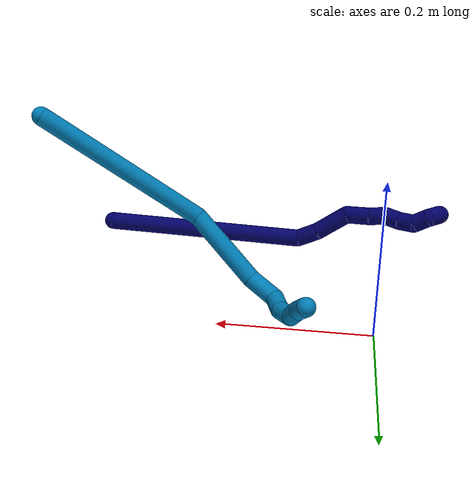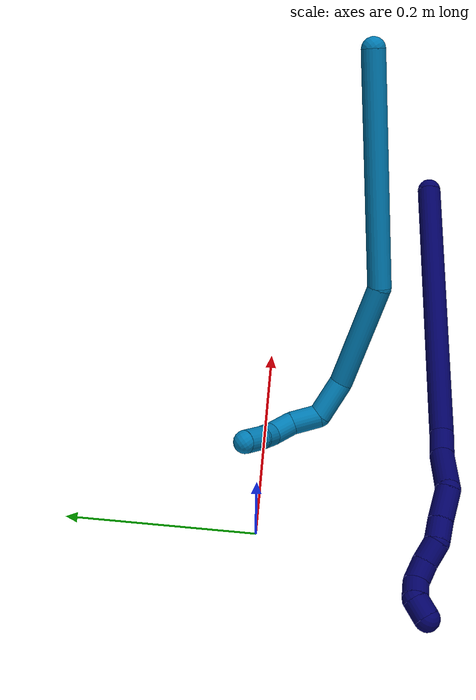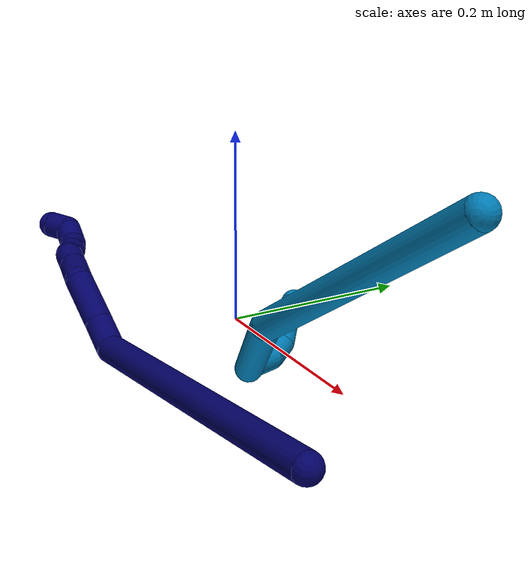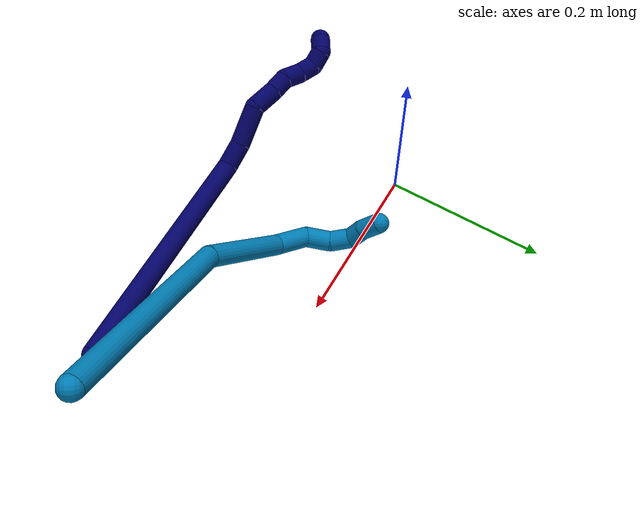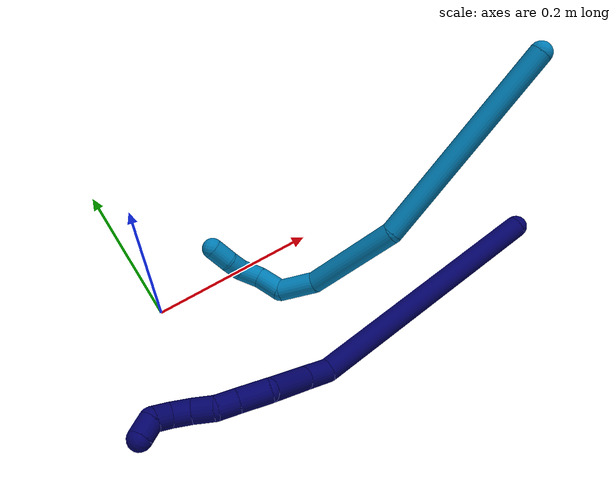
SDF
<sdf version="1.7">
 <world name="default">
  <model name="7">
   <static>0</static>
   <link name="7">
    <collision name="collision-cylinder-e_1_1_4">
     <pose>-0.11736 -0.004647 -0.07619 3.08068 -0.99414 -3.02939</pose>
     <geometry><cylinder><radius>0.0125</radius><length>0.28</length></cylinder></geometry>
     <surface>
      <friction><ode><mu>1.16</mu><mu2>1.16</mu2><slip1>0</slip1><slip2>0</slip2></ode></friction>
      <contact><ode><kp>1e+06</kp><kd>1</kd><max_vel>0</max_vel><min_depth>0.001</min_depth></ode></contact>
     </surface>
    </collision>
    <visual name="visual-cylinder-e_1_1_4">
     <pose>-0.11736 -0.004647 -0.07619 3.08068 -0.99414 -3.02939</pose>
     <geometry><cylinder><radius>0.0125</radius><length>0.28</length></cylinder></geometry>
     <material><ambient>0.003922 0 0.403922 1</ambient></material>
    </visual>
    <collision name="collision-cylinder-e_2_4_5">
     <pose>-0.249876 -0.005566 -0.154296 -2.04583 -1.30099 1.78987</pose>
     <geometry><cylinder><radius>0.0125</radius><length>0.031448</length></cylinder></geometry>
     <surface>
      <friction><ode><mu>1.16</mu><mu2>1.16</mu2><slip1>0</slip1><slip2>0</slip2></ode></friction>
      <contact><ode><kp>1e+06</kp><kd>1</kd><max_vel>0</max_vel><min_depth>0.001</min_depth></ode></contact>
     </surface>
    </collision>
    <visual name="visual-cylinder-e_2_4_5">
     <pose>-0.249876 -0.005566 -0.154296 -2.04583 -1.30099 1.78987</pose>
     <geometry><cylinder><radius>0.0125</radius><length>0.031448</length></cylinder></geometry>
     <material><ambient>0.003922 0 0.403922 1</ambient></material>
    </visual>
    <collision name="collision-cylinder-e_3_5_6">
     <pose>-0.289481 0.003245 -0.154973 -1.33154 -1.35991 1.1316</pose>
     <geometry><cylinder><radius>0.0125</radius><length>0.050006</length></cylinder></geometry>
     <surface>
      <friction><ode><mu>1.16</mu><mu2>1.16</mu2><slip1>0</slip1><slip2>0</slip2></ode></friction>
      <contact><ode><kp>1e+06</kp><kd>1</kd><max_vel>0</max_vel><min_depth>0.001</min_depth></ode></contact>
     </surface>
    </collision>
    <visual name="visual-cylinder-e_3_5_6">
     <pose>-0.289481 0.003245 -0.154973 -1.33154 -1.35991 1.1316</pose>
     <geometry><cylinder><radius>0.0125</radius><length>0.050006</length></cylinder></geometry>
     <material><ambient>0.003922 0 0.403922 1</ambient></material>
    </visual>
    <collision name="collision-cylinder-e_4_6_7">
     <pose>-0.327401 0.013068 -0.162045 -2.62358 -0.953236 2.19334</pose>
     <geometry><cylinder><radius>0.0125</radius><length>0.033045</length></cylinder></geometry>
     <surface>
      <friction><ode><mu>1.16</mu><mu2>1.16</mu2><slip1>0</slip1><slip2>0</slip2></ode></friction>
      <contact><ode><kp>1e+06</kp><kd>1</kd><max_vel>0</max_vel><min_depth>0.001</min_depth></ode></contact>
     </surface>
    </collision>
    <visual name="visual-cylinder-e_4_6_7">
     <pose>-0.327401 0.013068 -0.162045 -2.62358 -0.953236 2.19334</pose>
     <geometry><cylinder><radius>0.0125</radius><length>0.033045</length></cylinder></geometry>
     <material><ambient>0.003922 0 0.403922 1</ambient></material>
    </visual>
    <collision name="collision-cylinder-e_5_7_8">
     <pose>-0.350594 0.020826 -0.174864 -2.5511 -1.06177 2.18567</pose>
     <geometry><cylinder><radius>0.0125</radius><length>0.022268</length></cylinder></geometry>
     <surface>
      <friction><ode><mu>1.16</mu><mu2>1.16</mu2><slip1>0</slip1><slip2>0</slip2></ode></friction>
      <contact><ode><kp>1e+06</kp><kd>1</kd><max_vel>0</max_vel><min_depth>0.001</min_depth></ode></contact>
     </surface>
    </collision>
    <visual name="visual-cylinder-e_5_7_8">
     <pose>-0.350594 0.020826 -0.174864 -2.5511 -1.06177 2.18567</pose>
     <geometry><cylinder><radius>0.0125</radius><length>0.022268</length></cylinder></geometry>
     <material><ambient>0.003922 0 0.403922 1</ambient></material>
    </visual>
    <collision name="collision-cylinder-e_6_8_9">
     <pose>-0.366874 0.028975 -0.186779 -2.53613 -0.629226 1.61183</pose>
     <geometry><cylinder><radius>0.0125</radius><length>0.022288</length></cylinder></geometry>
     <surface>
      <friction><ode><mu>1.16</mu><mu2>1.16</mu2><slip1>0</slip1><slip2>0</slip2></ode></friction>
      <contact><ode><kp>1e+06</kp><kd>1</kd><max_vel>0</max_vel><min_depth>0.001</min_depth></ode></contact>
     </surface>
    </collision>
    <visual name="visual-cylinder-e_6_8_9">
     <pose>-0.366874 0.028975 -0.186779 -2.53613 -0.629226 1.61183</pose>
     <geometry><cylinder><radius>0.0125</radius><length>0.022288</length></cylinder></geometry>
     <material><ambient>0.003922 0 0.403922 1</ambient></material>
    </visual>
    <collision name="collision-cylinder-e_7_9_10">
     <pose>-0.380822 0.038418 -0.200094 -2.51058 -0.790411 1.81367</pose>
     <geometry><cylinder><radius>0.0125</radius><length>0.020795</length></cylinder></geometry>
     <surface>
      <friction><ode><mu>1.16</mu><mu2>1.16</mu2><slip1>0</slip1><slip2>0</slip2></ode></friction>
      <contact><ode><kp>1e+06</kp><kd>1</kd><max_vel>0</max_vel><min_depth>0.001</min_depth></ode></contact>
     </surface>
    </collision>
    <visual name="visual-cylinder-e_7_9_10">
     <pose>-0.380822 0.038418 -0.200094 -2.51058 -0.790411 1.81367</pose>
     <geometry><cylinder><radius>0.0125</radius><length>0.020795</length></cylinder></geometry>
     <material><ambient>0.003922 0 0.403922 1</ambient></material>
    </visual>
    <collision name="collision-cylinder-e_8_10_11">
     <pose>-0.397769 0.045725 -0.206529 -1.74572 -1.26312 1.4344</pose>
     <geometry><cylinder><radius>0.0125</radius><length>0.020059</length></cylinder></geometry>
     <surface>
      <friction><ode><mu>1.16</mu><mu2>1.16</mu2><slip1>0</slip1><slip2>0</slip2></ode></friction>
      <contact><ode><kp>1e+06</kp><kd>1</kd><max_vel>0</max_vel><min_depth>0.001</min_depth></ode></contact>
     </surface>
    </collision>
    <visual name="visual-cylinder-e_8_10_11">
     <pose>-0.397769 0.045725 -0.206529 -1.74572 -1.26312 1.4344</pose>
     <geometry><cylinder><radius>0.0125</radius><length>0.020059</length></cylinder></geometry>
     <material><ambient>0.003922 0 0.403922 1</ambient></material>
    </visual>
    <collision name="collision-cylinder-e_9_11_2">
     <pose>-0.416201 0.044507 -0.209171 2.03614 -1.08281 -1.54531</pose>
     <geometry><cylinder><radius>0.0125</radius><length>0.020091</length></cylinder></geometry>
     <surface>
      <friction><ode><mu>1.16</mu><mu2>1.16</mu2><slip1>0</slip1><slip2>0</slip2></ode></friction>
      <contact><ode><kp>1e+06</kp><kd>1</kd><max_vel>0</max_vel><min_depth>0.001</min_depth></ode></contact>
     </surface>
    </collision>
    <visual name="visual-cylinder-e_9_11_2">
     <pose>-0.416201 0.044507 -0.209171 2.03614 -1.08281 -1.54531</pose>
     <geometry><cylinder><radius>0.0125</radius><length>0.020091</length></cylinder></geometry>
     <material><ambient>0.003922 0 0.403922 1</ambient></material>
    </visual>
    <collision name="collision-sphere-2">
     <pose>-0.425074 0.040298 -0.211284 0 -0 0</pose>
     <geometry><sphere><radius>0.0125</radius></sphere></geometry>
     <surface>
      <friction><ode><mu>1.16</mu><mu2>1.16</mu2><slip1>0</slip1><slip2>0</slip2></ode></friction>
      <contact><ode><kp>1e+06</kp><kd>1</kd><max_vel>0</max_vel><min_depth>0.001</min_depth></ode></contact>
     </surface>
    </collision>
    <visual name="visual-sphere-2">
     <pose>-0.425074 0.040298 -0.211284 0 -0 0</pose>
     <geometry><sphere><radius>0.0125</radius></sphere></geometry>
     <material><ambient>0.003922 0 0.403922 1</ambient></material>
    </visual>
    <collision name="collision-sphere-11">
     <pose>-0.407328 0.048716 -0.207058 0 -0 0</pose>
     <geometry><sphere><radius>0.0125</radius></sphere></geometry>
     <surface>
      <friction><ode><mu>1.16</mu><mu2>1.16</mu2><slip1>0</slip1><slip2>0</slip2></ode></friction>
      <contact><ode><kp>1e+06</kp><kd>1</kd><max_vel>0</max_vel><min_depth>0.001</min_depth></ode></contact>
     </surface>
    </collision>
    <visual name="visual-sphere-11">
     <pose>-0.407328 0.048716 -0.207058 0 -0 0</pose>
     <geometry><sphere><radius>0.0125</radius></sphere></geometry>
     <material><ambient>0.003922 0 0.403922 1</ambient></material>
    </visual>
    <collision name="collision-sphere-10">
     <pose>-0.388211 0.042734 -0.206 0 -0 0</pose>
     <geometry><sphere><radius>0.0125</radius></sphere></geometry>
     <surface>
      <friction><ode><mu>1.16</mu><mu2>1.16</mu2><slip1>0</slip1><slip2>0</slip2></ode></friction>
      <contact><ode><kp>1e+06</kp><kd>1</kd><max_vel>0</max_vel><min_depth>0.001</min_depth></ode></contact>
     </surface>
    </collision>
    <visual name="visual-sphere-10">
     <pose>-0.388211 0.042734 -0.206 0 -0 0</pose>
     <geometry><sphere><radius>0.0125</radius></sphere></geometry>
     <material><ambient>0.003922 0 0.403922 1</ambient></material>
    </visual>
    <collision name="collision-sphere-9">
     <pose>-0.373433 0.034102 -0.194187 0 -0 0</pose>
     <geometry><sphere><radius>0.0125</radius></sphere></geometry>
     <surface>
      <friction><ode><mu>1.16</mu><mu2>1.16</mu2><slip1>0</slip1><slip2>0</slip2></ode></friction>
      <contact><ode><kp>1e+06</kp><kd>1</kd><max_vel>0</max_vel><min_depth>0.001</min_depth></ode></contact>
     </surface>
    </collision>
    <visual name="visual-sphere-9">
     <pose>-0.373433 0.034102 -0.194187 0 -0 0</pose>
     <geometry><sphere><radius>0.0125</radius></sphere></geometry>
     <material><ambient>0.003922 0 0.403922 1</ambient></material>
    </visual>
    <collision name="collision-sphere-4">
     <pose>-0.234721 -0.009293 -0.15238 0 -0 0</pose>
     <geometry><sphere><radius>0.0125</radius></sphere></geometry>
     <surface>
      <friction><ode><mu>1.16</mu><mu2>1.16</mu2><slip1>0</slip1><slip2>0</slip2></ode></friction>
      <contact><ode><kp>1e+06</kp><kd>1</kd><max_vel>0</max_vel><min_depth>0.001</min_depth></ode></contact>
     </surface>
    </collision>
    <visual name="visual-sphere-4">
     <pose>-0.234721 -0.009293 -0.15238 0 -0 0</pose>
     <geometry><sphere><radius>0.0125</radius></sphere></geometry>
     <material><ambient>0.003922 0 0.403922 1</ambient></material>
    </visual>
    <collision name="collision-sphere-1">
     <geometry><sphere><radius>0.0125</radius></sphere></geometry>
     <surface>
      <friction><ode><mu>1.16</mu><mu2>1.16</mu2><slip1>0</slip1><slip2>0</slip2></ode></friction>
      <contact><ode><kp>1e+06</kp><kd>1</kd><max_vel>0</max_vel><min_depth>0.001</min_depth></ode></contact>
     </surface>
    </collision>
    <visual name="visual-sphere-1">
     <geometry><sphere><radius>0.0125</radius></sphere></geometry>
     <material><ambient>0.003922 0 0.403922 1</ambient></material>
    </visual>
    <collision name="collision-sphere-8">
     <pose>-0.360316 0.023847 -0.179371 0 -0 0</pose>
     <geometry><sphere><radius>0.0125</radius></sphere></geometry>
     <surface>
      <friction><ode><mu>1.16</mu><mu2>1.16</mu2><slip1>0</slip1><slip2>0</slip2></ode></friction>
      <contact><ode><kp>1e+06</kp><kd>1</kd><max_vel>0</max_vel><min_depth>0.001</min_depth></ode></contact>
     </surface>
    </collision>
    <visual name="visual-sphere-8">
     <pose>-0.360316 0.023847 -0.179371 0 -0 0</pose>
     <geometry><sphere><radius>0.0125</radius></sphere></geometry>
     <material><ambient>0.003922 0 0.403922 1</ambient></material>
    </visual>
    <collision name="collision-sphere-5">
     <pose>-0.265031 -0.001839 -0.156213 0 -0 0</pose>
     <geometry><sphere><radius>0.0125</radius></sphere></geometry>
     <surface>
      <friction><ode><mu>1.16</mu><mu2>1.16</mu2><slip1>0</slip1><slip2>0</slip2></ode></friction>
      <contact><ode><kp>1e+06</kp><kd>1</kd><max_vel>0</max_vel><min_depth>0.001</min_depth></ode></contact>
     </surface>
    </collision>
    <visual name="visual-sphere-5">
     <pose>-0.265031 -0.001839 -0.156213 0 -0 0</pose>
     <geometry><sphere><radius>0.0125</radius></sphere></geometry>
     <material><ambient>0.003922 0 0.403922 1</ambient></material>
    </visual>
    <collision name="collision-sphere-6">
     <pose>-0.31393 0.00833 -0.153733 0 -0 0</pose>
     <geometry><sphere><radius>0.0125</radius></sphere></geometry>
     <surface>
      <friction><ode><mu>1.16</mu><mu2>1.16</mu2><slip1>0</slip1><slip2>0</slip2></ode></friction>
      <contact><ode><kp>1e+06</kp><kd>1</kd><max_vel>0</max_vel><min_depth>0.001</min_depth></ode></contact>
     </surface>
    </collision>
    <visual name="visual-sphere-6">
     <pose>-0.31393 0.00833 -0.153733 0 -0 0</pose>
     <geometry><sphere><radius>0.0125</radius></sphere></geometry>
     <material><ambient>0.003922 0 0.403922 1</ambient></material>
    </visual>
    <collision name="collision-sphere-7">
     <pose>-0.340871 0.017805 -0.170357 0 -0 0</pose>
     <geometry><sphere><radius>0.0125</radius></sphere></geometry>
     <surface>
      <friction><ode><mu>1.16</mu><mu2>1.16</mu2><slip1>0</slip1><slip2>0</slip2></ode></friction>
      <contact><ode><kp>1e+06</kp><kd>1</kd><max_vel>0</max_vel><min_depth>0.001</min_depth></ode></contact>
     </surface>
    </collision>
    <visual name="visual-sphere-7">
     <pose>-0.340871 0.017805 -0.170357 0 -0 0</pose>
     <geometry><sphere><radius>0.0125</radius></sphere></geometry>
     <material><ambient>0.003922 0 0.403922 1</ambient></material>
    </visual>
    <inertial>
     <pose>-0.212515 0.005676 -0.119706 0 -0 0</pose>
     <mass>0.5</mass>
     <inertia>
      <ixx>-0.001136</ixx>
      <ixy>0</ixy>
      <ixz>0</ixz>
      <iyy>0.00176</iyy>
      <iyz>0</iyz>
      <izz>0.001607</izz>
     </inertia>
    </inertial>
   </link>
   <pose>0.388512 -0.160025 0.070118 0.385179 0.477073 0.257225</pose>
  </model>
  <model name="9">
   <static>0</static>
   <link name="9">
    <collision name="collision-cylinder-e_1_1_4">
     <pose>-0.097589 0.039705 -0.059378 -2.55219 -0.938951 2.0632</pose>
     <geometry><cylinder><radius>0.0125</radius><length>0.241874</length></cylinder></geometry>
     <surface>
      <friction><ode><mu>1.16</mu><mu2>1.16</mu2><slip1>0</slip1><slip2>0</slip2></ode></friction>
      <contact><ode><kp>1e+06</kp><kd>1</kd><max_vel>0</max_vel><min_depth>0.001</min_depth></ode></contact>
     </surface>
    </collision>
    <visual name="visual-cylinder-e_1_1_4">
     <pose>-0.097589 0.039705 -0.059378 -2.55219 -0.938951 2.0632</pose>
     <geometry><cylinder><radius>0.0125</radius><length>0.241874</length></cylinder></geometry>
     <material><ambient>0 0.490196 0.709804 1</ambient></material>
    </visual>
    <collision name="collision-cylinder-e_2_4_5">
     <pose>-0.23382 0.080489 -0.160195 -3.11558 -0.750308 3.07555</pose>
     <geometry><cylinder><radius>0.0125</radius><length>0.113342</length></cylinder></geometry>
     <surface>
      <friction><ode><mu>1.16</mu><mu2>1.16</mu2><slip1>0</slip1><slip2>0</slip2></ode></friction>
      <contact><ode><kp>1e+06</kp><kd>1</kd><max_vel>0</max_vel><min_depth>0.001</min_depth></ode></contact>
     </surface>
    </collision>
    <visual name="visual-cylinder-e_2_4_5">
     <pose>-0.23382 0.080489 -0.160195 -3.11558 -0.750308 3.07555</pose>
     <geometry><cylinder><radius>0.0125</radius><length>0.113342</length></cylinder></geometry>
     <material><ambient>0 0.490196 0.709804 1</ambient></material>
    </visual>
    <collision name="collision-cylinder-e_3_5_6">
     <pose>-0.280693 0.084834 -0.221347 -2.97736 -0.390749 2.35334</pose>
     <geometry><cylinder><radius>0.0125</radius><length>0.04322</length></cylinder></geometry>
     <surface>
      <friction><ode><mu>1.16</mu><mu2>1.16</mu2><slip1>0</slip1><slip2>0</slip2></ode></friction>
      <contact><ode><kp>1e+06</kp><kd>1</kd><max_vel>0</max_vel><min_depth>0.001</min_depth></ode></contact>
     </surface>
    </collision>
    <visual name="visual-cylinder-e_3_5_6">
     <pose>-0.280693 0.084834 -0.221347 -2.97736 -0.390749 2.35334</pose>
     <geometry><cylinder><radius>0.0125</radius><length>0.04322</length></cylinder></geometry>
     <material><ambient>0 0.490196 0.709804 1</ambient></material>
    </visual>
    <collision name="collision-cylinder-e_4_6_7">
     <pose>-0.285221 0.084582 -0.255611 2.9043 0.242442 1.59249</pose>
     <geometry><cylinder><radius>0.0125</radius><length>0.030845</length></cylinder></geometry>
     <surface>
      <friction><ode><mu>1.16</mu><mu2>1.16</mu2><slip1>0</slip1><slip2>0</slip2></ode></friction>
      <contact><ode><kp>1e+06</kp><kd>1</kd><max_vel>0</max_vel><min_depth>0.001</min_depth></ode></contact>
     </surface>
    </collision>
    <visual name="visual-cylinder-e_4_6_7">
     <pose>-0.285221 0.084582 -0.255611 2.9043 0.242442 1.59249</pose>
     <geometry><cylinder><radius>0.0125</radius><length>0.030845</length></cylinder></geometry>
     <material><ambient>0 0.490196 0.709804 1</ambient></material>
    </visual>
    <collision name="collision-cylinder-e_5_7_8">
     <pose>-0.278242 0.08264 -0.28258 -3.01519 0.256012 -2.22764</pose>
     <geometry><cylinder><radius>0.0125</radius><length>0.025879</length></cylinder></geometry>
     <surface>
      <friction><ode><mu>1.16</mu><mu2>1.16</mu2><slip1>0</slip1><slip2>0</slip2></ode></friction>
      <contact><ode><kp>1e+06</kp><kd>1</kd><max_vel>0</max_vel><min_depth>0.001</min_depth></ode></contact>
     </surface>
    </collision>
    <visual name="visual-cylinder-e_5_7_8">
     <pose>-0.278242 0.08264 -0.28258 -3.01519 0.256012 -2.22764</pose>
     <geometry><cylinder><radius>0.0125</radius><length>0.025879</length></cylinder></geometry>
     <material><ambient>0 0.490196 0.709804 1</ambient></material>
    </visual>
    <collision name="collision-cylinder-e_6_8_9">
     <pose>-0.268175 0.089322 -0.300831 -2.42279 0.719418 -1.57174</pose>
     <geometry><cylinder><radius>0.0125</radius><length>0.020608</length></cylinder></geometry>
     <surface>
      <friction><ode><mu>1.16</mu><mu2>1.16</mu2><slip1>0</slip1><slip2>0</slip2></ode></friction>
      <contact><ode><kp>1e+06</kp><kd>1</kd><max_vel>0</max_vel><min_depth>0.001</min_depth></ode></contact>
     </surface>
    </collision>
    <visual name="visual-cylinder-e_6_8_9">
     <pose>-0.268175 0.089322 -0.300831 -2.42279 0.719418 -1.57174</pose>
     <geometry><cylinder><radius>0.0125</radius><length>0.020608</length></cylinder></geometry>
     <material><ambient>0 0.490196 0.709804 1</ambient></material>
    </visual>
    <collision name="collision-cylinder-e_7_9_2">
     <pose>-0.253574 0.098215 -0.315115 -2.72006 0.700722 -2.08229</pose>
     <geometry><cylinder><radius>0.0125</radius><length>0.024232</length></cylinder></geometry>
     <surface>
      <friction><ode><mu>1.16</mu><mu2>1.16</mu2><slip1>0</slip1><slip2>0</slip2></ode></friction>
      <contact><ode><kp>1e+06</kp><kd>1</kd><max_vel>0</max_vel><min_depth>0.001</min_depth></ode></contact>
     </surface>
    </collision>
    <visual name="visual-cylinder-e_7_9_2">
     <pose>-0.253574 0.098215 -0.315115 -2.72006 0.700722 -2.08229</pose>
     <geometry><cylinder><radius>0.0125</radius><length>0.024232</length></cylinder></geometry>
     <material><ambient>0 0.490196 0.709804 1</ambient></material>
    </visual>
    <collision name="collision-sphere-2">
     <pose>-0.245762 0.102004 -0.323565 0 -0 0</pose>
     <geometry><sphere><radius>0.0125</radius></sphere></geometry>
     <surface>
      <friction><ode><mu>1.16</mu><mu2>1.16</mu2><slip1>0</slip1><slip2>0</slip2></ode></friction>
      <contact><ode><kp>1e+06</kp><kd>1</kd><max_vel>0</max_vel><min_depth>0.001</min_depth></ode></contact>
     </surface>
    </collision>
    <visual name="visual-sphere-2">
     <pose>-0.245762 0.102004 -0.323565 0 -0 0</pose>
     <geometry><sphere><radius>0.0125</radius></sphere></geometry>
     <material><ambient>0 0.490196 0.709804 1</ambient></material>
    </visual>
    <collision name="collision-sphere-9">
     <pose>-0.261386 0.094426 -0.306664 0 -0 0</pose>
     <geometry><sphere><radius>0.0125</radius></sphere></geometry>
     <surface>
      <friction><ode><mu>1.16</mu><mu2>1.16</mu2><slip1>0</slip1><slip2>0</slip2></ode></friction>
      <contact><ode><kp>1e+06</kp><kd>1</kd><max_vel>0</max_vel><min_depth>0.001</min_depth></ode></contact>
     </surface>
    </collision>
    <visual name="visual-sphere-9">
     <pose>-0.261386 0.094426 -0.306664 0 -0 0</pose>
     <geometry><sphere><radius>0.0125</radius></sphere></geometry>
     <material><ambient>0 0.490196 0.709804 1</ambient></material>
    </visual>
    <collision name="collision-sphere-4">
     <pose>-0.195178 0.079411 -0.118755 0 -0 0</pose>
     <geometry><sphere><radius>0.0125</radius></sphere></geometry>
     <surface>
      <friction><ode><mu>1.16</mu><mu2>1.16</mu2><slip1>0</slip1><slip2>0</slip2></ode></friction>
      <contact><ode><kp>1e+06</kp><kd>1</kd><max_vel>0</max_vel><min_depth>0.001</min_depth></ode></contact>
     </surface>
    </collision>
    <visual name="visual-sphere-4">
     <pose>-0.195178 0.079411 -0.118755 0 -0 0</pose>
     <geometry><sphere><radius>0.0125</radius></sphere></geometry>
     <material><ambient>0 0.490196 0.709804 1</ambient></material>
    </visual>
    <collision name="collision-sphere-1">
     <geometry><sphere><radius>0.0125</radius></sphere></geometry>
     <surface>
      <friction><ode><mu>1.16</mu><mu2>1.16</mu2><slip1>0</slip1><slip2>0</slip2></ode></friction>
      <contact><ode><kp>1e+06</kp><kd>1</kd><max_vel>0</max_vel><min_depth>0.001</min_depth></ode></contact>
     </surface>
    </collision>
    <visual name="visual-sphere-1">
     <geometry><sphere><radius>0.0125</radius></sphere></geometry>
     <material><ambient>0 0.490196 0.709804 1</ambient></material>
    </visual>
    <collision name="collision-sphere-8">
     <pose>-0.274965 0.084218 -0.294998 0 -0 0</pose>
     <geometry><sphere><radius>0.0125</radius></sphere></geometry>
     <surface>
      <friction><ode><mu>1.16</mu><mu2>1.16</mu2><slip1>0</slip1><slip2>0</slip2></ode></friction>
      <contact><ode><kp>1e+06</kp><kd>1</kd><max_vel>0</max_vel><min_depth>0.001</min_depth></ode></contact>
     </surface>
    </collision>
    <visual name="visual-sphere-8">
     <pose>-0.274965 0.084218 -0.294998 0 -0 0</pose>
     <geometry><sphere><radius>0.0125</radius></sphere></geometry>
     <material><ambient>0 0.490196 0.709804 1</ambient></material>
    </visual>
    <collision name="collision-sphere-5">
     <pose>-0.272462 0.081567 -0.201635 0 -0 0</pose>
     <geometry><sphere><radius>0.0125</radius></sphere></geometry>
     <surface>
      <friction><ode><mu>1.16</mu><mu2>1.16</mu2><slip1>0</slip1><slip2>0</slip2></ode></friction>
      <contact><ode><kp>1e+06</kp><kd>1</kd><max_vel>0</max_vel><min_depth>0.001</min_depth></ode></contact>
     </surface>
    </collision>
    <visual name="visual-sphere-5">
     <pose>-0.272462 0.081567 -0.201635 0 -0 0</pose>
     <geometry><sphere><radius>0.0125</radius></sphere></geometry>
     <material><ambient>0 0.490196 0.709804 1</ambient></material>
    </visual>
    <collision name="collision-sphere-6">
     <pose>-0.288923 0.088101 -0.241059 0 -0 0</pose>
     <geometry><sphere><radius>0.0125</radius></sphere></geometry>
     <surface>
      <friction><ode><mu>1.16</mu><mu2>1.16</mu2><slip1>0</slip1><slip2>0</slip2></ode></friction>
      <contact><ode><kp>1e+06</kp><kd>1</kd><max_vel>0</max_vel><min_depth>0.001</min_depth></ode></contact>
     </surface>
    </collision>
    <visual name="visual-sphere-6">
     <pose>-0.288923 0.088101 -0.241059 0 -0 0</pose>
     <geometry><sphere><radius>0.0125</radius></sphere></geometry>
     <material><ambient>0 0.490196 0.709804 1</ambient></material>
    </visual>
    <collision name="collision-sphere-7">
     <pose>-0.281518 0.081062 -0.270162 0 -0 0</pose>
     <geometry><sphere><radius>0.0125</radius></sphere></geometry>
     <surface>
      <friction><ode><mu>1.16</mu><mu2>1.16</mu2><slip1>0</slip1><slip2>0</slip2></ode></friction>
      <contact><ode><kp>1e+06</kp><kd>1</kd><max_vel>0</max_vel><min_depth>0.001</min_depth></ode></contact>
     </surface>
    </collision>
    <visual name="visual-sphere-7">
     <pose>-0.281518 0.081062 -0.270162 0 -0 0</pose>
     <geometry><sphere><radius>0.0125</radius></sphere></geometry>
     <material><ambient>0 0.490196 0.709804 1</ambient></material>
    </visual>
    <inertial>
     <pose>-0.179813 0.062722 -0.142236 0 -0 0</pose>
     <mass>0.5</mass>
     <inertia>
      <ixx>0.000179</ixx>
      <ixy>0</ixy>
      <ixz>0</ixz>
      <iyy>0.00171</iyy>
      <iyz>0</iyz>
      <izz>0.000624</izz>
     </inertia>
    </inertial>
   </link>
   <pose>0.440246 -0.076843 0.243668 1.29945 -0.989652 0.90484</pose>
  </model>
 </world>
</sdf>
